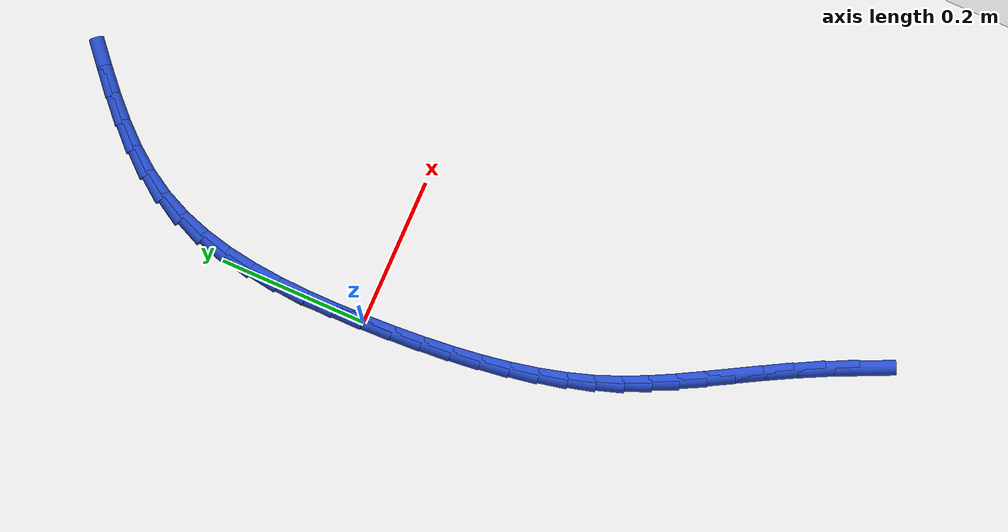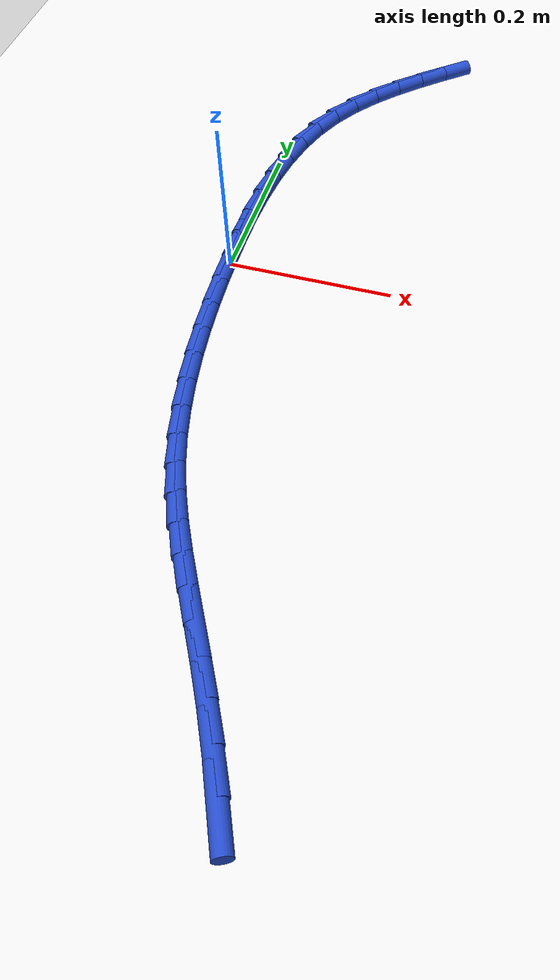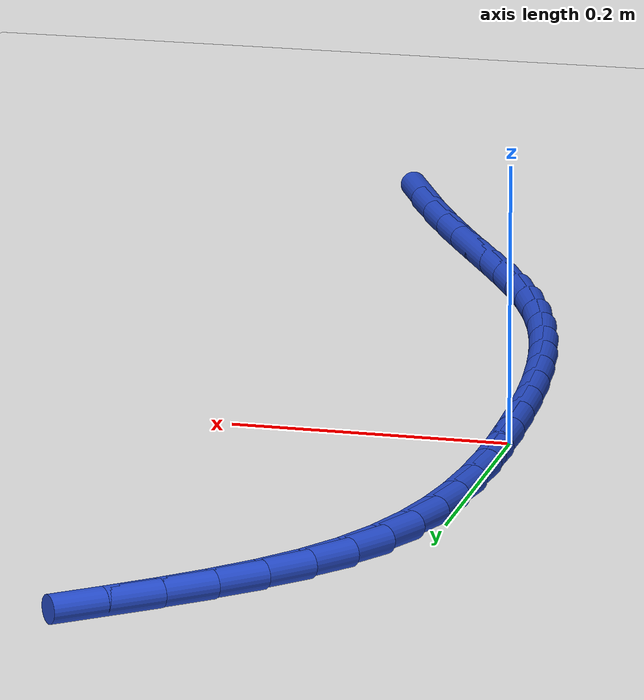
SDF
<sdf version="1.6">
 <world name="default">
  <model name="ground_plane">
   <static>1</static>
   <link name="link">
    <collision name="collision">
     <geometry><plane><normal>0 0 1</normal><size>100 100</size></plane></geometry>
     <surface><friction><ode><mu>100</mu><mu2>50</mu2></ode></friction></surface>
    </collision>
    <visual name="visual">
     <cast_shadows>0</cast_shadows>
     <geometry><plane><normal>0 0 1</normal><size>100 100</size></plane></geometry>
     <material>
      <script><uri>file://media/materials/scripts/gazebo.material</uri><name>Gazebo/WhiteGlow</name></script>
     </material>
    </visual>
   </link>
  </model>
  <model name="line">
   <link name="link_0">
    <pose>-3.686287386450715e-17 -3.469446951953614e-17 0.01 0 1.57 -1.5474649795137356</pose>
    <collision name="collision">
     <geometry><cylinder><radius>0.01</radius><length>0.08</length></cylinder></geometry>
    </collision>
    <visual name="visual">
     <material>
      <script><name>Gazebo/Blue</name><uri>file://media/materials/scripts/gazebo.material</uri></script>
     </material>
     <geometry><cylinder><radius>0.01</radius><length>0.08</length></cylinder></geometry>
    </visual>
   </link>
   <link name="link_1">
    <pose>-0.0009463680217165169 0.04055472172470044 0.01 0 1.57 1.5663769954412827</pose>
    <collision name="collision">
     <geometry><cylinder><radius>0.01</radius><length>0.08</length></cylinder></geometry>
    </collision>
    <visual name="visual">
     <material>
      <script><name>Gazebo/Blue</name><uri>file://media/materials/scripts/gazebo.material</uri></script>
     </material>
     <geometry><cylinder><radius>0.01</radius><length>0.08</length></cylinder></geometry>
    </visual>
   </link>
   <link name="link_2">
    <pose>-0.0007676793318576765 0.08098788055961592 0.01 0 1.57 1.5282201143947394</pose>
    <collision name="collision">
     <geometry><cylinder><radius>0.01</radius><length>0.08</length></cylinder></geometry>
    </collision>
    <visual name="visual">
     <material>
      <script><name>Gazebo/Blue</name><uri>file://media/materials/scripts/gazebo.material</uri></script>
     </material>
     <geometry><cylinder><radius>0.01</radius><length>0.08</length></cylinder></geometry>
    </visual>
   </link>
   <link name="link_3">
    <pose>0.0009369492790904928 0.12100079804909797 0.01 0 1.57 1.478640631615229</pose>
    <collision name="collision">
     <geometry><cylinder><radius>0.01</radius><length>0.08</length></cylinder></geometry>
    </collision>
    <visual name="visual">
     <material>
      <script><name>Gazebo/Blue</name><uri>file://media/materials/scripts/gazebo.material</uri></script>
     </material>
     <geometry><cylinder><radius>0.01</radius><length>0.08</length></cylinder></geometry>
    </visual>
   </link>
   <link name="link_4">
    <pose>0.004568401020641995 0.1602947957374982 0.01 0 1.57 1.4163486970955699</pose>
    <collision name="collision">
     <geometry><cylinder><radius>0.01</radius><length>0.08</length></cylinder></geometry>
    </collision>
    <visual name="visual">
     <material>
      <script><name>Gazebo/Blue</name><uri>file://media/materials/scripts/gazebo.material</uri></script>
     </material>
     <geometry><cylinder><radius>0.01</radius><length>0.08</length></cylinder></geometry>
    </visual>
   </link>
   <link name="link_5">
    <pose>0.010527559102310837 0.19857119516916835 0.01 0 1.57 1.3399300408139554</pose>
    <collision name="collision">
     <geometry><cylinder><radius>0.01</radius><length>0.08</length></cylinder></geometry>
    </collision>
    <visual name="visual">
     <material>
      <script><name>Gazebo/Blue</name><uri>file://media/materials/scripts/gazebo.material</uri></script>
     </material>
     <geometry><cylinder><radius>0.01</radius><length>0.08</length></cylinder></geometry>
    </visual>
   </link>
   <link name="link_6">
    <pose>0.019215306733611014 0.23553131788845993 0.01 0 1.57 1.2481421565263737</pose>
    <collision name="collision">
     <geometry><cylinder><radius>0.01</radius><length>0.08</length></cylinder></geometry>
    </collision>
    <visual name="visual">
     <material>
      <script><name>Gazebo/Blue</name><uri>file://media/materials/scripts/gazebo.material</uri></script>
     </material>
     <geometry><cylinder><radius>0.01</radius><length>0.08</length></cylinder></geometry>
    </visual>
   </link>
   <link name="link_7">
    <pose>0.031032527124056554 0.27087648543972465 0.01 0 1.57 1.140421432893402</pose>
    <collision name="collision">
     <geometry><cylinder><radius>0.01</radius><length>0.08</length></cylinder></geometry>
    </collision>
    <visual name="visual">
     <material>
      <script><name>Gazebo/Blue</name><uri>file://media/materials/scripts/gazebo.material</uri></script>
     </material>
     <geometry><cylinder><radius>0.01</radius><length>0.08</length></cylinder></geometry>
    </visual>
   </link>
   <link name="link_8">
    <pose>0.04638010348316142 0.30430801936731405 0.01 0 1.57 1.0210808743892197</pose>
    <collision name="collision">
     <geometry><cylinder><radius>0.01</radius><length>0.08</length></cylinder></geometry>
    </collision>
    <visual name="visual">
     <material>
      <script><name>Gazebo/Blue</name><uri>file://media/materials/scripts/gazebo.material</uri></script>
     </material>
     <geometry><cylinder><radius>0.01</radius><length>0.08</length></cylinder></geometry>
    </visual>
   </link>
   <link name="link_9">
    <pose>0.06555181117323954 0.3355978459254147 0.01 0 1.57 0.9143115836792571</pose>
    <collision name="collision">
     <geometry><cylinder><radius>0.01</radius><length>0.08</length></cylinder></geometry>
    </collision>
    <visual name="visual">
     <material>
      <script><name>Gazebo/Blue</name><uri>file://media/materials/scripts/gazebo.material</uri></script>
     </material>
     <geometry><cylinder><radius>0.01</radius><length>0.08</length></cylinder></geometry>
    </visual>
   </link>
   <link name="link_10">
    <pose>0.08817355723955875 0.36495814528018544 0.01 0 1.57 0.8299035956743306</pose>
    <collision name="collision">
     <geometry><cylinder><radius>0.01</radius><length>0.08</length></cylinder></geometry>
    </collision>
    <visual name="visual">
     <material>
      <script><name>Gazebo/Blue</name><uri>file://media/materials/scripts/gazebo.material</uri></script>
     </material>
     <geometry><cylinder><radius>0.01</radius><length>0.08</length></cylinder></geometry>
    </visual>
   </link>
   <link name="link_11">
    <pose>0.11361428277335917 0.3927704876760648 0.01 0 1.57 0.767310610865753</pose>
    <collision name="collision">
     <geometry><cylinder><radius>0.01</radius><length>0.08</length></cylinder></geometry>
    </collision>
    <visual name="visual">
     <material>
      <script><name>Gazebo/Blue</name><uri>file://media/materials/scripts/gazebo.material</uri></script>
     </material>
     <geometry><cylinder><radius>0.01</radius><length>0.08</length></cylinder></geometry>
    </visual>
   </link>
   <link name="link_12">
    <pose>0.14124239128901275 0.41941679772423235 0.01 0 1.57 0.7251274121420125</pose>
    <collision name="collision">
     <geometry><cylinder><radius>0.01</radius><length>0.08</length></cylinder></geometry>
    </collision>
    <visual name="visual">
     <material>
      <script><name>Gazebo/Blue</name><uri>file://media/materials/scripts/gazebo.material</uri></script>
     </material>
     <geometry><cylinder><radius>0.01</radius><length>0.08</length></cylinder></geometry>
    </visual>
   </link>
   <link name="link_13">
    <pose>0.17042628630089154 0.44527900003586773 0.01 0 1.57 0.7019461398511795</pose>
    <collision name="collision">
     <geometry><cylinder><radius>0.01</radius><length>0.08</length></cylinder></geometry>
    </collision>
    <visual name="visual">
     <material>
      <script><name>Gazebo/Blue</name><uri>file://media/materials/scripts/gazebo.material</uri></script>
     </material>
     <geometry><cylinder><radius>0.01</radius><length>0.08</length></cylinder></geometry>
    </visual>
   </link>
   <link name="link_183">
    <pose>0.20485762830738877 -0.6183544601922485 0.01 0 1.57 -1.1398335550316467</pose>
    <collision name="collision">
     <geometry><cylinder><radius>0.01</radius><length>0.08</length></cylinder></geometry>
    </collision>
    <visual name="visual">
     <material>
      <script><name>Gazebo/Blue</name><uri>file://media/materials/scripts/gazebo.material</uri></script>
     </material>
     <geometry><cylinder><radius>0.01</radius><length>0.08</length></cylinder></geometry>
    </visual>
   </link>
   <link name="link_184">
    <pose>0.1852288375111239 -0.5756633907012431 0.01 0 1.57 -1.1065019578676425</pose>
    <collision name="collision">
     <geometry><cylinder><radius>0.01</radius><length>0.08</length></cylinder></geometry>
    </collision>
    <visual name="visual">
     <material>
      <script><name>Gazebo/Blue</name><uri>file://media/materials/scripts/gazebo.material</uri></script>
     </material>
     <geometry><cylinder><radius>0.01</radius><length>0.08</length></cylinder></geometry>
    </visual>
   </link>
   <link name="link_185">
    <pose>0.1655317345775218 -0.5363327990408921 0.01 0 1.57 -1.0798801490881376</pose>
    <collision name="collision">
     <geometry><cylinder><radius>0.01</radius><length>0.08</length></cylinder></geometry>
    </collision>
    <visual name="visual">
     <material>
      <script><name>Gazebo/Blue</name><uri>file://media/materials/scripts/gazebo.material</uri></script>
     </material>
     <geometry><cylinder><radius>0.01</radius><length>0.08</length></cylinder></geometry>
    </visual>
   </link>
   <link name="link_186">
    <pose>0.14600933105994215 -0.499812669143051 0.01 0 1.57 -1.0635687365815185</pose>
    <collision name="collision">
     <geometry><cylinder><radius>0.01</radius><length>0.08</length></cylinder></geometry>
    </collision>
    <visual name="visual">
     <material>
      <script><name>Gazebo/Blue</name><uri>file://media/materials/scripts/gazebo.material</uri></script>
     </material>
     <geometry><cylinder><radius>0.01</radius><length>0.08</length></cylinder></geometry>
    </visual>
   </link>
   <link name="link_187">
    <pose>0.12692268730654963 -0.4654671545361961 0.01 0 1.57 -1.059889353228444</pose>
    <collision name="collision">
     <geometry><cylinder><radius>0.01</radius><length>0.08</length></cylinder></geometry>
    </collision>
    <visual name="visual">
     <material>
      <script><name>Gazebo/Blue</name><uri>file://media/materials/scripts/gazebo.material</uri></script>
     </material>
     <geometry><cylinder><radius>0.01</radius><length>0.08</length></cylinder></geometry>
    </visual>
   </link>
   <link name="link_188">
    <pose>0.10853286366550874 -0.43266040874880396 0.01 0 1.57 -1.0707286172274868</pose>
    <collision name="collision">
     <geometry><cylinder><radius>0.01</radius><length>0.08</length></cylinder></geometry>
    </collision>
    <visual name="visual">
     <material>
      <script><name>Gazebo/Blue</name><uri>file://media/materials/scripts/gazebo.material</uri></script>
     </material>
     <geometry><cylinder><radius>0.01</radius><length>0.08</length></cylinder></geometry>
    </visual>
   </link>
   <link name="link_189">
    <pose>0.09110092048498405 -0.40075658530935104 0.01 0 1.57 -1.0972195943786465</pose>
    <collision name="collision">
     <geometry><cylinder><radius>0.01</radius><length>0.08</length></cylinder></geometry>
    </collision>
    <visual name="visual">
     <material>
      <script><name>Gazebo/Blue</name><uri>file://media/materials/scripts/gazebo.material</uri></script>
     </material>
     <geometry><cylinder><radius>0.01</radius><length>0.08</length></cylinder></geometry>
    </visual>
   </link>
   <link name="link_190">
    <pose>0.0748879181131402 -0.36911983774631396 0.01 0 1.57 -1.1393878043862324</pose>
    <collision name="collision">
     <geometry><cylinder><radius>0.01</radius><length>0.08</length></cylinder></geometry>
    </collision>
    <visual name="visual">
     <material>
      <script><name>Gazebo/Blue</name><uri>file://media/materials/scripts/gazebo.material</uri></script>
     </material>
     <geometry><cylinder><radius>0.01</radius><length>0.08</length></cylinder></geometry>
    </visual>
   </link>
   <link name="link_191">
    <pose>0.06015491689814172 -0.33711431958816923 0.01 0 1.57 -1.195831654621601</pose>
    <collision name="collision">
     <geometry><cylinder><radius>0.01</radius><length>0.08</length></cylinder></geometry>
    </collision>
    <visual name="visual">
     <material>
      <script><name>Gazebo/Blue</name><uri>file://media/materials/scripts/gazebo.material</uri></script>
     </material>
     <geometry><cylinder><radius>0.01</radius><length>0.08</length></cylinder></geometry>
    </visual>
   </link>
   <link name="link_192">
    <pose>0.04716276202172634 -0.30410460301620607 0.01 0 1.57 -1.2592627328101842</pose>
    <collision name="collision">
     <geometry><cylinder><radius>0.01</radius><length>0.08</length></cylinder></geometry>
    </collision>
    <visual name="visual">
     <material>
      <script><name>Gazebo/Blue</name><uri>file://media/materials/scripts/gazebo.material</uri></script>
     </material>
     <geometry><cylinder><radius>0.01</radius><length>0.08</length></cylinder></geometry>
    </visual>
   </link>
   <link name="link_193">
    <pose>0.036069447427976235 -0.269655379535472 0.01 0 1.57 -1.3165648990172496</pose>
    <collision name="collision">
     <geometry><cylinder><radius>0.01</radius><length>0.08</length></cylinder></geometry>
    </collision>
    <visual name="visual">
     <material>
      <script><name>Gazebo/Blue</name><uri>file://media/materials/scripts/gazebo.material</uri></script>
     </material>
     <geometry><cylinder><radius>0.01</radius><length>0.08</length></cylinder></geometry>
    </visual>
   </link>
   <link name="link_194">
    <pose>0.02676565116981534 -0.23385146152256653 0.01 0 1.57 -1.366433927412694</pose>
    <collision name="collision">
     <geometry><cylinder><radius>0.01</radius><length>0.08</length></cylinder></geometry>
    </collision>
    <visual name="visual">
     <material>
      <script><name>Gazebo/Blue</name><uri>file://media/materials/scripts/gazebo.material</uri></script>
     </material>
     <geometry><cylinder><radius>0.01</radius><length>0.08</length></cylinder></geometry>
    </visual>
   </link>
   <link name="link_195">
    <pose>0.019099181128168212 -0.19686107454410515 0.01 0 1.57 -1.4095779645245339</pose>
    <collision name="collision">
     <geometry><cylinder><radius>0.01</radius><length>0.08</length></cylinder></geometry>
    </collision>
    <visual name="visual">
     <material>
      <script><name>Gazebo/Blue</name><uri>file://media/materials/scripts/gazebo.material</uri></script>
     </material>
     <geometry><cylinder><radius>0.01</radius><length>0.08</length></cylinder></geometry>
    </visual>
   </link>
   <link name="link_196">
    <pose>0.012917845183959465 -0.15885244416670335 0.01 0 1.57 -1.4466677893298694</pose>
    <collision name="collision">
     <geometry><cylinder><radius>0.01</radius><length>0.08</length></cylinder></geometry>
    </collision>
    <visual name="visual">
     <material>
      <script><name>Gazebo/Blue</name><uri>file://media/materials/scripts/gazebo.material</uri></script>
     </material>
     <geometry><cylinder><radius>0.01</radius><length>0.08</length></cylinder></geometry>
    </visual>
   </link>
   <link name="link_197">
    <pose>0.008069451218113675 -0.11999379595697653 0.01 0 1.57 -1.4783041985683367</pose>
    <collision name="collision">
     <geometry><cylinder><radius>0.01</radius><length>0.08</length></cylinder></geometry>
    </collision>
    <visual name="visual">
     <material>
      <script><name>Gazebo/Blue</name><uri>file://media/materials/scripts/gazebo.material</uri></script>
     </material>
     <geometry><cylinder><radius>0.01</radius><length>0.08</length></cylinder></geometry>
    </visual>
   </link>
   <link name="link_198">
    <pose>0.004401807111555435 -0.08045335548154003 0.01 0 1.57 -1.5050032267532636</pose>
    <collision name="collision">
     <geometry><cylinder><radius>0.01</radius><length>0.08</length></cylinder></geometry>
    </collision>
    <visual name="visual">
     <material>
      <script><name>Gazebo/Blue</name><uri>file://media/materials/scripts/gazebo.material</uri></script>
     </material>
     <geometry><cylinder><radius>0.01</radius><length>0.08</length></cylinder></geometry>
    </visual>
   </link>
   <link name="link_199">
    <pose>0.001762720745209335 -0.040399348307009426 0.01 0 1.57 -1.5271915786930765</pose>
    <collision name="collision">
     <geometry><cylinder><radius>0.01</radius><length>0.08</length></cylinder></geometry>
    </collision>
    <visual name="visual">
     <material>
      <script><name>Gazebo/Blue</name><uri>file://media/materials/scripts/gazebo.material</uri></script>
     </material>
     <geometry><cylinder><radius>0.01</radius><length>0.08</length></cylinder></geometry>
    </visual>
   </link>
   <link name="link_200">
    <pose>-3.382710778154774e-17 -2.0816681711721685e-17 0.01 0 1.57 -1.5452070947411976</pose>
    <collision name="collision">
     <geometry><cylinder><radius>0.01</radius><length>0.08</length></cylinder></geometry>
    </collision>
    <visual name="visual">
     <material>
      <script><name>Gazebo/Blue</name><uri>file://media/materials/scripts/gazebo.material</uri></script>
     </material>
     <geometry><cylinder><radius>0.01</radius><length>0.08</length></cylinder></geometry>
    </visual>
   </link>
   <link name="link_201">
    <pose>-0.0010385472431481018 0.04057646387287357 0.01 0 1.57 -1.5452070947411976</pose>
    <collision name="collision">
     <geometry><cylinder><radius>0.01</radius><length>0.08</length></cylinder></geometry>
    </collision>
    <visual name="visual">
     <material>
      <script><name>Gazebo/Blue</name><uri>file://media/materials/scripts/gazebo.material</uri></script>
     </material>
     <geometry><cylinder><radius>0.01</radius><length>0.08</length></cylinder></geometry>
    </visual>
   </link>
  </model>
 </world>
</sdf>
